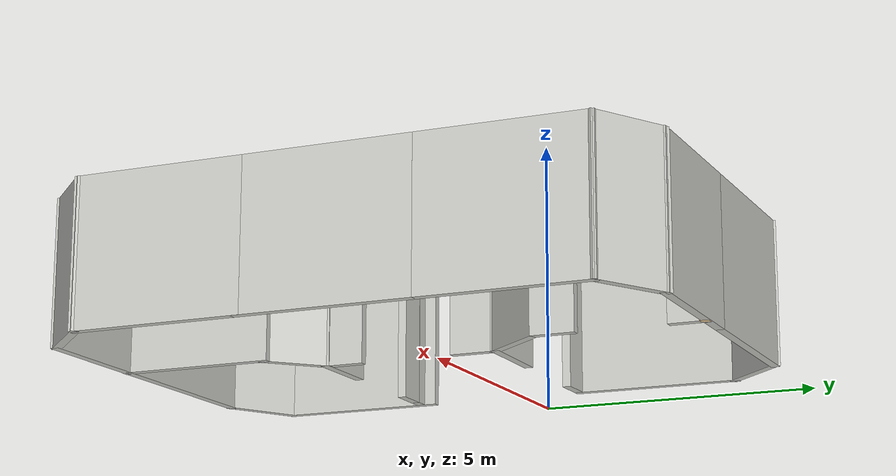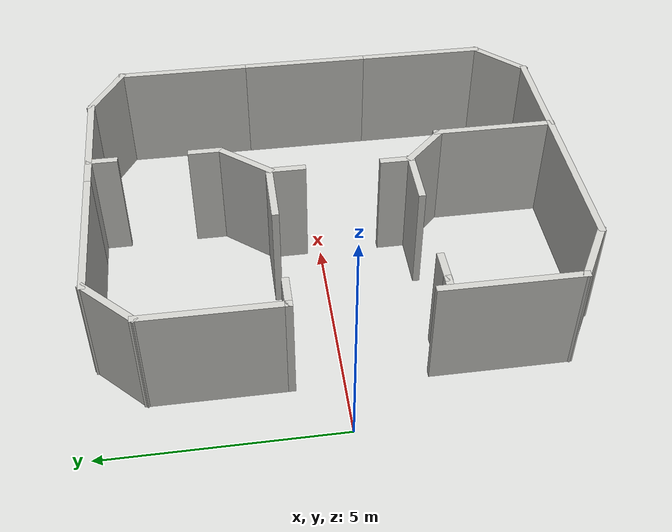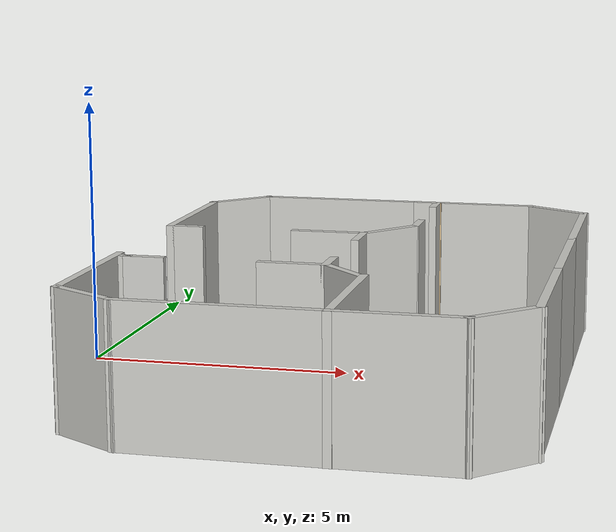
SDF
<?xml version='1.0'?>
<sdf version='1.7'>
  <model name='TP_Scene4'>
    <pose>4.57014 -0.217618 0 0 -0 0</pose>
    <link name='Wall_10'>
      <collision name='Wall_10_Collision'>
        <geometry>
          <box>
            <size>3 0.15 2.5</size>
          </box>
        </geometry>
        <pose>0 0 1.25 0 -0 0</pose>
      </collision>
      <visual name='Wall_10_Visual'>
        <pose>0 0 1.25 0 -0 0</pose>
        <geometry>
          <box>
            <size>3 0.15 2.5</size>
          </box>
        </geometry>
        <material>
          <script>
            <uri>file://media/materials/scripts/gazebo.material</uri>
            <name>Gazebo/CeilingTiled</name>
          </script>
          <ambient>0.921569 0.807843 0.615686 1</ambient>
        </material>
        <meta>
          <layer>0</layer>
        </meta>
      </visual>
      <pose>4.46408 0.139797 0 0 -0 -1.5708</pose>
    </link>
    <link name='Wall_11'>
      <collision name='Wall_11_Collision'>
        <geometry>
          <box>
            <size>3 0.15 2.5</size>
          </box>
        </geometry>
        <pose>0 0 1.25 0 -0 0</pose>
      </collision>
      <visual name='Wall_11_Visual'>
        <pose>0 0 1.25 0 -0 0</pose>
        <geometry>
          <box>
            <size>3 0.15 2.5</size>
          </box>
        </geometry>
        <material>
          <script>
            <uri>file://media/materials/scripts/gazebo.material</uri>
            <name>Gazebo/CeilingTiled</name>
          </script>
          <ambient>0.921569 0.807843 0.615686 1</ambient>
        </material>
        <meta>
          <layer>0</layer>
        </meta>
      </visual>
      <pose>4.46408 -2.7102 0 0 -0 -1.5708</pose>
    </link>
    <link name='Wall_12'>
      <collision name='Wall_12_Collision'>
        <geometry>
          <box>
            <size>1.5 0.15 2.5</size>
          </box>
        </geometry>
        <pose>0 0 1.25 0 -0 0</pose>
      </collision>
      <visual name='Wall_12_Visual'>
        <pose>0 0 1.25 0 -0 0</pose>
        <geometry>
          <box>
            <size>1.5 0.15 2.5</size>
          </box>
        </geometry>
        <material>
          <script>
            <uri>file://media/materials/scripts/gazebo.material</uri>
            <name>Gazebo/CeilingTiled</name>
          </script>
          <ambient>0.921569 0.807843 0.615686 1</ambient>
        </material>
        <meta>
          <layer>0</layer>
        </meta>
      </visual>
      <pose>3.98678 -4.6125 0 0 -0 -2.35619</pose>
    </link>
    <link name='Wall_13'>
      <collision name='Wall_13_Collision'>
        <geometry>
          <box>
            <size>2.32719 0.15 2.5</size>
          </box>
        </geometry>
        <pose>0 0 1.25 0 -0 0</pose>
      </collision>
      <visual name='Wall_13_Visual'>
        <pose>0 0 1.25 0 -0 0</pose>
        <geometry>
          <box>
            <size>2.32719 0.15 2.5</size>
          </box>
        </geometry>
        <material>
          <script>
            <uri>file://media/materials/scripts/gazebo.material</uri>
            <name>Gazebo/CeilingTiled</name>
          </script>
          <ambient>0.921569 0.807843 0.615686 1</ambient>
        </material>
        <meta>
          <layer>0</layer>
        </meta>
      </visual>
      <pose>2.42096 -5.09252 0 0 -0 -3.13909</pose>
    </link>
    <link name='Wall_14'>
      <collision name='Wall_14_Collision'>
        <geometry>
          <box>
            <size>3.67337 0.15 2.5</size>
          </box>
        </geometry>
        <pose>0 0 1.25 0 -0 0</pose>
      </collision>
      <visual name='Wall_14_Visual'>
        <pose>0 0 1.25 0 -0 0</pose>
        <geometry>
          <box>
            <size>3.67337 0.15 2.5</size>
          </box>
        </geometry>
        <material>
          <script>
            <uri>file://media/materials/scripts/gazebo.material</uri>
            <name>Gazebo/CeilingTiled</name>
          </script>
          <ambient>0.921569 0.807843 0.615686 1</ambient>
        </material>
        <meta>
          <layer>0</layer>
        </meta>
      </visual>
      <pose>-0.429041 -5.09252 0 0 -0 3.14005</pose>
    </link>
    <link name='Wall_15'>
      <collision name='Wall_15_Collision'>
        <geometry>
          <box>
            <size>1.5 0.15 2.5</size>
          </box>
        </geometry>
        <pose>0 0 1.25 0 -0 0</pose>
      </collision>
      <visual name='Wall_15_Visual'>
        <pose>0 0 1.25 0 -0 0</pose>
        <geometry>
          <box>
            <size>1.5 0.15 2.5</size>
          </box>
        </geometry>
        <material>
          <script>
            <uri>file://media/materials/scripts/gazebo.material</uri>
            <name>Gazebo/CeilingTiled</name>
          </script>
          <ambient>0.921569 0.807843 0.615686 1</ambient>
        </material>
        <meta>
          <layer>0</layer>
        </meta>
      </visual>
      <pose>-2.77508 -4.7523 0 0 -0 2.61799</pose>
    </link>
    <link name='Wall_2'>
      <collision name='Wall_2_Collision'>
        <geometry>
          <box>
            <size>3 0.15 2.5</size>
          </box>
        </geometry>
        <pose>0 0 1.25 0 -0 0</pose>
      </collision>
      <visual name='Wall_2_Visual'>
        <pose>0 0 1.25 0 -0 0</pose>
        <geometry>
          <box>
            <size>3 0.15 2.5</size>
          </box>
        </geometry>
        <material>
          <script>
            <uri>file://media/materials/scripts/gazebo.material</uri>
            <name>Gazebo/CeilingTiled</name>
          </script>
          <ambient>0.921569 0.807843 0.615686 1</ambient>
        </material>
        <meta>
          <layer>0</layer>
        </meta>
      </visual>
      <pose>-3.35965 -2.9898 0 0 -0 1.5708</pose>
    </link>
    <link name='Wall_36'>
      <collision name='Wall_36_Collision'>
        <geometry>
          <box>
            <size>0.75 0.15 2.5</size>
          </box>
        </geometry>
        <pose>0 0 1.25 0 -0 0</pose>
      </collision>
      <visual name='Wall_36_Visual'>
        <pose>0 0 1.25 0 -0 0</pose>
        <geometry>
          <box>
            <size>0.75 0.15 2.5</size>
          </box>
        </geometry>
        <material>
          <script>
            <uri>file://media/materials/scripts/gazebo.material</uri>
            <name>Gazebo/CeilingTiled</name>
          </script>
          <ambient>0.921569 0.807843 0.615686 1</ambient>
        </material>
        <meta>
          <layer>0</layer>
        </meta>
      </visual>
      <pose>-3.05965 1.2852 0 0 -0 0</pose>
    </link>
    <link name='Wall_38'>
      <collision name='Wall_38_Collision'>
        <geometry>
          <box>
            <size>1.5 0.15 2.5</size>
          </box>
        </geometry>
        <pose>0 0 1.25 0 -0 0</pose>
      </collision>
      <visual name='Wall_38_Visual'>
        <pose>0 0 1.25 0 -0 0</pose>
        <geometry>
          <box>
            <size>1.5 0.15 2.5</size>
          </box>
        </geometry>
        <material>
          <script>
            <uri>file://media/materials/scripts/gazebo.material</uri>
            <name>Gazebo/CeilingTiled</name>
          </script>
          <ambient>0.921569 0.807843 0.615686 1</ambient>
        </material>
        <meta>
          <layer>0</layer>
        </meta>
      </visual>
      <pose>-0.160322 1.29326 0 0 -0 0</pose>
    </link>
    <link name='Wall_4'>
      <collision name='Wall_4_Collision'>
        <geometry>
          <box>
            <size>3 0.15 2.5</size>
          </box>
        </geometry>
        <pose>0 0 1.25 0 -0 0</pose>
      </collision>
      <visual name='Wall_4_Visual'>
        <pose>0 0 1.25 0 -0 0</pose>
        <geometry>
          <box>
            <size>3 0.15 2.5</size>
          </box>
        </geometry>
        <material>
          <script>
            <uri>file://media/materials/scripts/gazebo.material</uri>
            <name>Gazebo/CeilingTiled</name>
          </script>
          <ambient>0.921569 0.807843 0.615686 1</ambient>
        </material>
        <meta>
          <layer>0</layer>
        </meta>
      </visual>
      <pose>-3.35965 2.7102 0 0 -0 1.5708</pose>
    </link>
    <link name='Wall_41'>
      <collision name='Wall_41_Collision'>
        <geometry>
          <box>
            <size>1.36573 0.15 2.5</size>
          </box>
        </geometry>
        <pose>0 0 1.25 0 -0 0</pose>
      </collision>
      <visual name='Wall_41_Visual'>
        <pose>0 0 1.25 0 -0 0</pose>
        <geometry>
          <box>
            <size>1.36573 0.15 2.5</size>
          </box>
        </geometry>
        <material>
          <script>
            <uri>file://media/materials/scripts/gazebo.material</uri>
            <name>Gazebo/CeilingTiled</name>
          </script>
          <ambient>0.921569 0.807843 0.615686 1</ambient>
        </material>
        <meta>
          <layer>0</layer>
        </meta>
      </visual>
      <pose>0.903586 1.74303 0 0 -0 0.876563</pose>
    </link>
    <link name='Wall_43'>
      <collision name='Wall_43_Collision'>
        <geometry>
          <box>
            <size>0.843478 0.15 2.5</size>
          </box>
        </geometry>
        <pose>0 0 1.25 0 -0 0</pose>
      </collision>
      <visual name='Wall_43_Visual'>
        <pose>0 0 1.25 0 -0 0</pose>
        <geometry>
          <box>
            <size>0.843478 0.15 2.5</size>
          </box>
        </geometry>
        <material>
          <script>
            <uri>file://media/materials/scripts/gazebo.material</uri>
            <name>Gazebo/CeilingTiled</name>
          </script>
          <ambient>0.921569 0.807843 0.615686 1</ambient>
        </material>
        <meta>
          <layer>0</layer>
        </meta>
      </visual>
      <pose>0.514678 0.929125 0 0 -0 -1.5708</pose>
    </link>
    <link name='Wall_45'>
      <collision name='Wall_45_Collision'>
        <geometry>
          <box>
            <size>0.75 0.15 2.5</size>
          </box>
        </geometry>
        <pose>0 0 1.25 0 -0 0</pose>
      </collision>
      <visual name='Wall_45_Visual'>
        <pose>0 0 1.25 0 -0 0</pose>
        <geometry>
          <box>
            <size>0.75 0.15 2.5</size>
          </box>
        </geometry>
        <material>
          <script>
            <uri>file://media/materials/scripts/gazebo.material</uri>
            <name>Gazebo/CeilingTiled</name>
          </script>
          <ambient>0.921569 0.807843 0.615686 1</ambient>
        </material>
        <meta>
          <layer>0</layer>
        </meta>
      </visual>
      <pose>0.499376 -1.4648 0 0 -0 -1.5708</pose>
    </link>
    <link name='Wall_46'>
      <collision name='Wall_46_Collision'>
        <geometry>
          <box>
            <size>1.25 0.15 2.5</size>
          </box>
        </geometry>
        <pose>0 0 1.25 0 -0 0</pose>
      </collision>
      <visual name='Wall_46_Visual'>
        <pose>0 0 1.25 0 -0 0</pose>
        <geometry>
          <box>
            <size>1.25 0.15 2.5</size>
          </box>
        </geometry>
        <material>
          <script>
            <uri>file://media/materials/scripts/gazebo.material</uri>
            <name>Gazebo/CeilingTiled</name>
          </script>
          <ambient>0.921569 0.807843 0.615686 1</ambient>
        </material>
        <meta>
          <layer>0</layer>
        </meta>
      </visual>
      <pose>0.905287 -2.15371 0 0 -0 -0.785398</pose>
    </link>
    <link name='Wall_49'>
      <collision name='Wall_49_Collision'>
        <geometry>
          <box>
            <size>2.75 0.15 2.5</size>
          </box>
        </geometry>
        <pose>0 0 1.25 0 -0 0</pose>
      </collision>
      <visual name='Wall_49_Visual'>
        <pose>0 0 1.25 0 -0 0</pose>
        <geometry>
          <box>
            <size>2.75 0.15 2.5</size>
          </box>
        </geometry>
        <material>
          <script>
            <uri>file://media/materials/scripts/gazebo.material</uri>
            <name>Gazebo/CeilingTiled</name>
          </script>
          <ambient>0.921569 0.807843 0.615686 1</ambient>
        </material>
        <meta>
          <layer>0</layer>
        </meta>
      </visual>
      <pose>1.33244 -3.80496 0 0 -0 1.5708</pose>
    </link>
    <link name='Wall_5'>
      <collision name='Wall_5_Collision'>
        <geometry>
          <box>
            <size>1.5 0.15 2.5</size>
          </box>
        </geometry>
        <pose>0 0 1.25 0 -0 0</pose>
      </collision>
      <visual name='Wall_5_Visual'>
        <pose>0 0 1.25 0 -0 0</pose>
        <geometry>
          <box>
            <size>1.5 0.15 2.5</size>
          </box>
        </geometry>
        <material>
          <script>
            <uri>file://media/materials/scripts/gazebo.material</uri>
            <name>Gazebo/CeilingTiled</name>
          </script>
          <ambient>0.921569 0.807843 0.615686 1</ambient>
        </material>
        <meta>
          <layer>0</layer>
        </meta>
      </visual>
      <pose>-2.88236 4.6125 0 0 -0 0.785398</pose>
    </link>
    <link name='Wall_55'>
      <collision name='Wall_55_Collision'>
        <geometry>
          <box>
            <size>1.32603 0.15 2.5</size>
          </box>
        </geometry>
        <pose>0 0 1.25 0 -0 0</pose>
      </collision>
      <visual name='Wall_55_Visual'>
        <pose>0 0 1.25 0 -0 0</pose>
        <geometry>
          <box>
            <size>1.32603 0.15 2.5</size>
          </box>
        </geometry>
        <material>
          <script>
            <uri>file://media/materials/scripts/gazebo.material</uri>
            <name>Gazebo/CeilingTiled</name>
          </script>
          <ambient>0.921569 0.807843 0.615686 1</ambient>
        </material>
        <meta>
          <layer>0</layer>
        </meta>
      </visual>
      <pose>-0.071637 -1.7648 0 0 -0 3.14159</pose>
    </link>
    <link name='Wall_57'>
      <collision name='Wall_57_Collision'>
        <geometry>
          <box>
            <size>0.761217 0.15 2.5</size>
          </box>
        </geometry>
        <pose>0 0 1.25 0 -0 0</pose>
      </collision>
      <visual name='Wall_57_Visual'>
        <pose>0 0 1.25 0 -0 0</pose>
        <geometry>
          <box>
            <size>0.761217 0.15 2.5</size>
          </box>
        </geometry>
        <material>
          <script>
            <uri>file://media/materials/scripts/gazebo.material</uri>
            <name>Gazebo/CeilingTiled</name>
          </script>
          <ambient>0.921569 0.807843 0.615686 1</ambient>
        </material>
        <meta>
          <layer>0</layer>
        </meta>
      </visual>
      <pose>-2.81521 -1.77035 0 0 -0 -3.1234</pose>
    </link>
    <link name='Wall_58'>
      <collision name='Wall_58_Collision'>
        <geometry>
          <box>
            <size>0.25 0.15 2.5</size>
          </box>
        </geometry>
        <pose>0 0 1.25 0 -0 0</pose>
      </collision>
      <visual name='Wall_58_Visual'>
        <pose>0 0 1.25 0 -0 0</pose>
        <geometry>
          <box>
            <size>0.25 0.15 2.5</size>
          </box>
        </geometry>
        <material>
          <script>
            <uri>file://media/materials/scripts/gazebo.material</uri>
            <name>Gazebo/CeilingTiled</name>
          </script>
          <ambient>0.921569 0.807843 0.615686 1</ambient>
        </material>
        <meta>
          <layer>0</layer>
        </meta>
      </visual>
      <pose>-3.16521 -1.77035 0 0 -0 3.14159</pose>
    </link>
    <link name='Wall_6'>
      <collision name='Wall_6_Collision'>
        <geometry>
          <box>
            <size>3.29398 0.15 2.5</size>
          </box>
        </geometry>
        <pose>0 0 1.25 0 -0 0</pose>
      </collision>
      <visual name='Wall_6_Visual'>
        <pose>0 0 1.25 0 -0 0</pose>
        <geometry>
          <box>
            <size>3.29398 0.15 2.5</size>
          </box>
        </geometry>
        <material>
          <script>
            <uri>file://media/materials/scripts/gazebo.material</uri>
            <name>Gazebo/CeilingTiled</name>
          </script>
          <ambient>0.921569 0.807843 0.615686 1</ambient>
        </material>
        <meta>
          <layer>0</layer>
        </meta>
      </visual>
      <pose>-0.833066 5.0898 0 0 -0 0</pose>
    </link>
    <link name='Wall_61'>
      <collision name='Wall_61_Collision'>
        <geometry>
          <box>
            <size>0.75 0.15 2.5</size>
          </box>
        </geometry>
        <pose>0 0 1.25 0 -0 0</pose>
      </collision>
      <visual name='Wall_61_Visual'>
        <pose>0 0 1.25 0 -0 0</pose>
        <geometry>
          <box>
            <size>0.75 0.15 2.5</size>
          </box>
        </geometry>
        <material>
          <script>
            <uri>file://media/materials/scripts/gazebo.material</uri>
            <name>Gazebo/CeilingTiled</name>
          </script>
          <ambient>0.921569 0.807843 0.615686 1</ambient>
        </material>
        <meta>
          <layer>0</layer>
        </meta>
      </visual>
      <pose>1.34726 2.60179 0 0 -0 1.5708</pose>
    </link>
    <link name='Wall_63'>
      <collision name='Wall_63_Collision'>
        <geometry>
          <box>
            <size>0.666573 0.15 2.5</size>
          </box>
        </geometry>
        <pose>0 0 1.25 0 -0 0</pose>
      </collision>
      <visual name='Wall_63_Visual'>
        <pose>0 0 1.25 0 -0 0</pose>
        <geometry>
          <box>
            <size>0.666573 0.15 2.5</size>
          </box>
        </geometry>
        <material>
          <script>
            <uri>file://media/materials/scripts/gazebo.material</uri>
            <name>Gazebo/CeilingTiled</name>
          </script>
          <ambient>0.921569 0.807843 0.615686 1</ambient>
        </material>
        <meta>
          <layer>0</layer>
        </meta>
      </visual>
      <pose>1.31326 4.80594 0 0 -0 1.5708</pose>
    </link>
    <link name='Wall_64'>
      <collision name='Wall_64_Collision'>
        <geometry>
          <box>
            <size>0.16 0.15 2.5</size>
          </box>
        </geometry>
        <pose>0 0 1.25 0 -0 0</pose>
      </collision>
      <visual name='Wall_64_Visual'>
        <pose>0 0 1.25 0 -0 0</pose>
        <geometry>
          <box>
            <size>0.16 0.15 2.5</size>
          </box>
        </geometry>
        <material>
          <script>
            <uri>file://media/materials/scripts/gazebo.material</uri>
            <name>Gazebo/Grey</name>
          </script>
          <ambient>0.921569 0.807843 0.615686 1</ambient>
        </material>
        <meta>
          <layer>0</layer>
        </meta>
      </visual>
      <pose>1.33338 5.06412 0 0 -0 0</pose>
    </link>
    <link name='Wall_7'>
      <collision name='Wall_7_Collision'>
        <geometry>
          <box>
            <size>2.70602 0.15 2.5</size>
          </box>
        </geometry>
        <pose>0 0 1.25 0 -0 0</pose>
      </collision>
      <visual name='Wall_7_Visual'>
        <pose>0 0 1.25 0 -0 0</pose>
        <geometry>
          <box>
            <size>2.70602 0.15 2.5</size>
          </box>
        </geometry>
        <material>
          <script>
            <uri>file://media/materials/scripts/gazebo.material</uri>
            <name>Gazebo/CeilingTiled</name>
          </script>
          <ambient>0.921569 0.807843 0.615686 1</ambient>
        </material>
        <meta>
          <layer>0</layer>
        </meta>
      </visual>
      <pose>2.01693 5.0898 0 0 -0 0</pose>
    </link>
    <link name='Wall_8'>
      <collision name='Wall_8_Collision'>
        <geometry>
          <box>
            <size>1.5 0.15 2.5</size>
          </box>
        </geometry>
        <pose>0 0 1.25 0 -0 0</pose>
      </collision>
      <visual name='Wall_8_Visual'>
        <pose>0 0 1.25 0 -0 0</pose>
        <geometry>
          <box>
            <size>1.5 0.15 2.5</size>
          </box>
        </geometry>
        <material>
          <script>
            <uri>file://media/materials/scripts/gazebo.material</uri>
            <name>Gazebo/CeilingTiled</name>
          </script>
          <ambient>0.921569 0.807843 0.615686 1</ambient>
        </material>
        <meta>
          <layer>0</layer>
        </meta>
      </visual>
      <pose>3.87951 4.7523 0 0 -0 -0.523599</pose>
    </link>
    <link name='Wall_9'>
      <collision name='Wall_9_Collision'>
        <geometry>
          <box>
            <size>3 0.15 2.5</size>
          </box>
        </geometry>
        <pose>0 0 1.25 0 -0 0</pose>
      </collision>
      <visual name='Wall_9_Visual'>
        <pose>0 0 1.25 0 -0 0</pose>
        <geometry>
          <box>
            <size>3 0.15 2.5</size>
          </box>
        </geometry>
        <material>
          <script>
            <uri>file://media/materials/scripts/gazebo.material</uri>
            <name>Gazebo/CeilingTiled</name>
          </script>
          <ambient>0.921569 0.807843 0.615686 1</ambient>
        </material>
        <meta>
          <layer>0</layer>
        </meta>
      </visual>
      <pose>4.46408 2.9898 0 0 -0 -1.5708</pose>
    </link>
    <static>1</static>
  </model>
</sdf>
